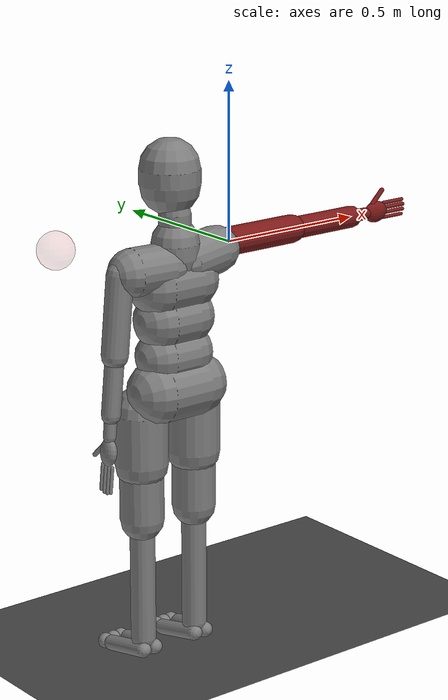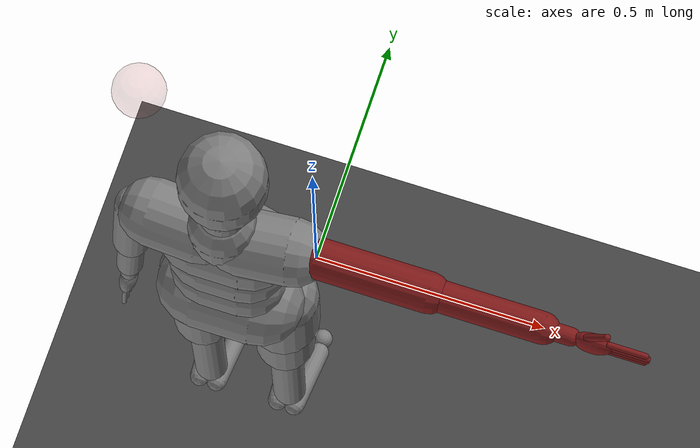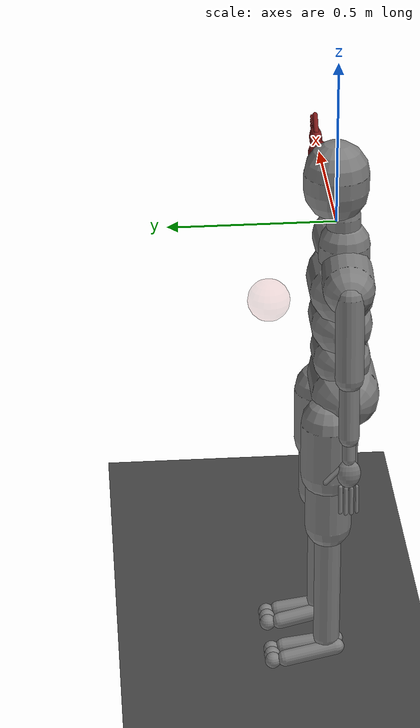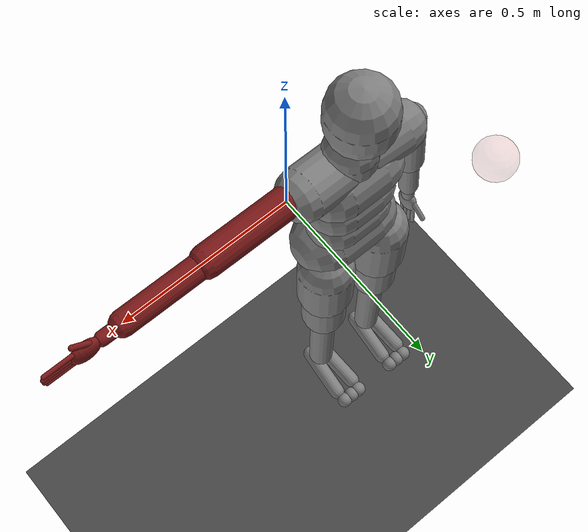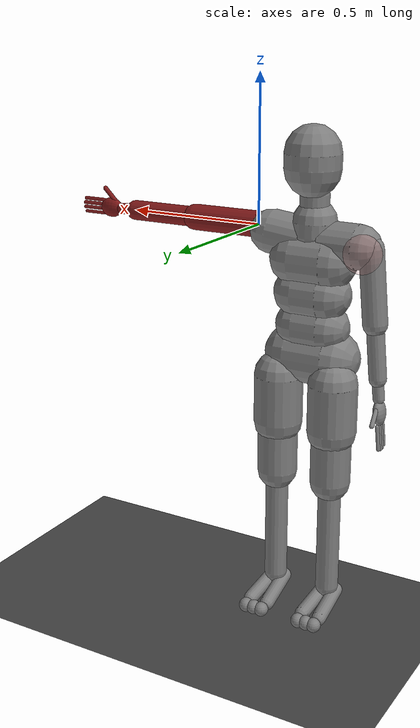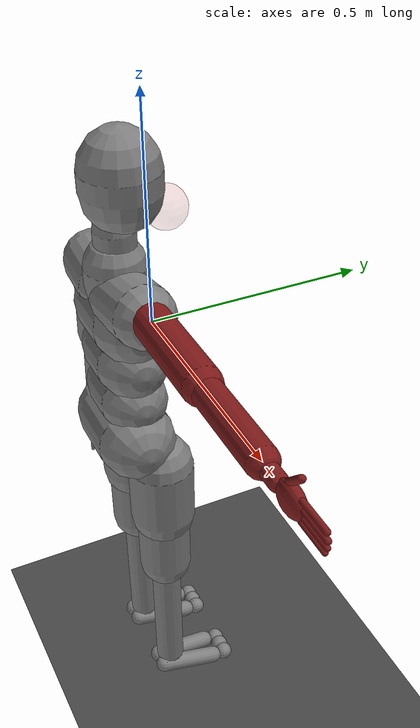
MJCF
<mujoco model="2-link arm position control">
  <option timestep="0.005" iterations="50" solver="Newton" tolerance="1e-10" />
  <compiler autolimits="true"/>

  <default>
  <!-- Adjust damping here -->
    <joint type="hinge" pos="0 0 0" axis="0 0 1" limited="true" range="-5 160" damping="2"/>
  </default>

  <worldbody>
    <body name="parent" pos="0 0 0">

      <geom name="upper arm" mass="1" type="capsule" size="0.045" fromto="0 0 0  0.25 0 0" rgba=".5 .1 .1 1"/>

      <joint name="shoulder" range="-60 160"/>

      <body name="child" pos="0.25 0 0">
        <geom name="forearm" mass="0.8" type="capsule" size="0.035" fromto="0 0 0  0.25 0 0" rgba=".5 .1 .1 1"/>
        <joint name="elbow"/>
        <!-- A visual representation of the hand. Notice there is no joint child, so it is rigidly attached to the forearm -->
        <body  name="rwrist_87" pos="0.25 0 0" euler="-90 0 90">
          <geom density="1000" type="capsule" size="0.02000001 0.03" pos="1.880135E-09 -0.03 -3.279598E-08" quat="4.003268E-08 -4.391836E-08 -0.7071071 -0.7071071" priority="0" contype="0" conaffinity="0" group="2" condim="1" solmix="1" solref="0.015 1" rgba=".5 .1 .1 1" solimp="0.99 0.99 0.003" margin="0" gap="0" friction="0.7 0.005 0.0001" name="rwrist_91" />
          <body pos="-9.784539E-09 -0.09076759 3.994287E-08" quat="-1 0 0 0" name="rhand_92">
            <geom density="1000" type="ellipsoid" size="0.03500002 0.02000001 0.045" pos="3.469804E-09 -0.01675202 -3.877605E-08" quat="4.003268E-08 -4.391836E-08 -0.7071071 -0.7071071" priority="0" contype="0" conaffinity="0" group="2" rgba=".5 .1 .1 1" condim="3" solmix="1" solref="0.015 1" solimp="0.98 0.98 0.001" margin="0" gap="0" friction="1 0.005 0.0001" name="rhand_95" />
            <body pos="-6.475558E-09 -0.06500006 1.90359E-08" quat="-1 0 0 0" name="rfingers_96">
              <geom density="1000" type="capsule" size="0.006500002 0.04" pos="-0.02399999 -0.02500005 -4.555073E-08" quat="0.7071071 -0.7071071 4.391836E-08 4.003268E-08" priority="0" contype="0" conaffinity="0" group="2" condim="3" rgba=".5 .1 .1 1" solmix="1" solref="0.015 1" solimp="0.98 0.98 0.001" margin="0" gap="0" friction="1 0.005 0.0001" name="rfinger0_101" />
              <geom density="1000" type="capsule" size="0.006500002 0.04" pos="-0.00799998 -0.02999995 -3.565628E-10" quat="0.7071071 -0.7071071 4.391836E-08 4.003268E-08" priority="0" contype="0" conaffinity="0" group="2" condim="3" rgba=".5 .1 .1 1" solmix="1" solref="0.015 1" solimp="0.98 0.98 0.001" margin="0" gap="0" friction="1 0.005 0.0001" name="rfinger1_102" />
              <geom density="1000" type="capsule" size="0.006000001 0.04" pos="0.007999999 -0.03000007 -5.897357E-09" quat="0.7071071 -0.7071071 4.391836E-08 4.003268E-08" priority="0" contype="0" conaffinity="0" group="2" condim="3" rgba=".5 .1 .1 1" solmix="1" solref="0.015 1" solimp="0.98 0.98 0.001" margin="0" gap="0" friction="1 0.005 0.0001" name="rfinger2_103" />
              <geom density="1000" type="capsule" size="0.005500001 0.04" pos="0.02400001 -0.02500007 3.095344E-08" quat="0.7071071 -0.7071071 4.391836E-08 4.003268E-08" priority="0" contype="0" conaffinity="0" group="2" condim="3" rgba=".5 .1 .1 1" solmix="1" solref="0.015 1" solimp="0.98 0.98 0.001" margin="0" gap="0" friction="1 0.005 0.0001" name="rfinger3_104" />
              <body name="tip" pos="-0.048 0 0">

              </body>
            </body>
            <body pos="-0.025 6.70552E-09 -8.940694E-09" quat="0.92388 -4.930634E-08 6.000214E-08 -0.382683" name="rthumb_97">
              <geom density="1000" type="capsule" size="0.008000004 0.03" pos="2.888915E-08 -0.03000006 -2.920286E-08" quat="3.642271E-08 6.018672E-09 -0.707107 -0.707107" priority="0" contype="0" conaffinity="0" group="2" rgba=".5 .1 .1 1"  condim="3" solmix="1" solref="0.015 1" solimp="0.98 0.98 0.001" margin="0" gap="0" friction="1 0.005 0.0001" name="rthumb_105" />
            </body>
          </body>
        </body>

      </body>
    </body>

    <body name="forward kinematics target" mocap="true" pos="-0.48 0.24 0">
        <geom type="sphere" size="0.06" contype="0" conaffinity="0" rgba="0.8 0.4 0.4 0.2"/>
    </body>

    <geom name="floor" pos="0 0 -1.35" size="0 0 1" type="plane" material="matplane"/>
    <light directional="true" diffuse=".8 .8 .8" specular=".2 .2 .2" pos="0 0 5" dir="0 0 -1"/>
  </worldbody>

  <actuator>
    <position kp="10" name="shoulder_p" joint="shoulder" ctrllimited="true" ctrlrange="-1.0472 1.5708"/>
    <position kp="10" name="elbow_p" joint="elbow" ctrllimited="true" ctrlrange="-0.0872665 1.5708"/>

  </actuator>

  <include file="cmu_model.xml"/>

  <asset>
    <texture type="skybox" builtin="gradient" rgb1="0.6 0.6 0.6" rgb2="0 0 0" width="512" height="512"/>
    <texture name="texplane" type="2d" builtin="checker" rgb1=".25 .25 .25" rgb2=".3 .3 .3" width="512" height="512" mark="cross" markrgb=".8 .8 .8"/>
    <material name="matplane" reflectance="0.3" texture="texplane" texrepeat="1 1" texuniform="true"/>
  </asset>

  <visual>
    <rgba haze=".3 .3 .3 1"/>
  </visual>
</mujoco>

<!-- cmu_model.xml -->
<!--
This model is only used as a visual reference to illustrate a humanoid body in some of the xml files.
-->

<mujoco>
  <worldbody>
    <body pos="-0.2067787 -0.0002415101 0.1821983" quat="-8.659561E-17 0 0.7071068 0.7071068" mocap="true" name="Mocap_K_head_0" />
    <body pos="-0.208 -0.004 -0.3789999" quat="-8.659561E-17 0 0.7071068 0.7071068" mocap="true" name="Mocap_K_lowerback_1" />
    <body pos="0.5372286 0.00427828 0.00206387" quat="-0.7071068 -2.980232E-07 1.192093E-07 -0.7071068" mocap="true" name="Mocap_K_rhand_2" />
    <body pos="-0.2085659 -0.012053 -0.2657869" quat="-8.659561E-17 0 0.7071068 0.7071068" mocap="true" name="Mocap_K_upperback_3" />
    <body pos="-0.106063 0.04544622 -1.291445" quat="-6.123234E-17 6.123234E-17 0 1" mocap="true" name="Mocap_K_rfoot_4" />
    <body pos="-0.309937 0.04544622 -1.291445" quat="-6.123234E-17 6.123234E-17 0 1" mocap="true" name="Mocap_K_lfoot_5" />
    <body pos="-0.461662 0.004277938 -0.570159" quat="0.5230872 0.475794 -0.4757942 -0.5230867" mocap="true" name="Mocap_K_lhand_6" />
    <body pos="-0.2090784 -0.01111618 -0.1522268" quat="-8.659561E-17 0 0.7071068 0.7071068" mocap="true" name="Mocap_K_thorax_7" />
    <body pos="-0.208 -0.004 -0.3789999" quat="-1 0 0 0" mocap="true" name="Mocap_K_root_8" />
    <body pos="-0.208 -0.004 -0.379" quat="-1 0 0 0" name="K_root_9">
      <body pos="0 0 0" quat="0 0 0.7071068 0.7071068" name="K_lhipjoint_10">
        <geom density="10" type="capsule" size="0.008000004 0.02187361" pos="0.05096854 -0.04590372 0.02472301" quat="0.5708001 -0.5666021 -0.5942641 0" priority="0" contype="0" conaffinity="0" group="2" condim="1" solmix="1" solref="0.015 1" solimp="0.99 0.99 0.003" margin="0" gap="0" friction="0.7 0.005 0.0001" name="K_lhipjoint_15" />
        <body pos="0.1019371 -0.09180747 0.04944616" quat="-1 0 0 0" name="K_lfemur_16">
          <joint type="ball" pos="0 0 0" armature="0.0225" springref="0" springdamper="0 0" damping="10" stiffness="1000" solreflimit="0.02 1" solimplimit="0.9 0.95 0.001 0.5 2" solreffriction="0.02 1" solimpfriction="0.9 0.95 0.001 0.5 2" frictionloss="100" limited="true" margin="0" range="0 137.51" name="K_lfemurr_22" />
          <geom density="0" type="capsule" size="0.08500003 0.083" pos="0 -0.115473 3.61172E-08" quat="0.6963643 -0.6963643 -0.1227881 -0.1227881" priority="0" contype="0" conaffinity="0" group="2" condim="1" solmix="1" solref="0.015 1" solimp="0.99 0.99 0.003" margin="0" gap="0" friction="0.7 0.005 0.0001" name="K_lfemur_upper_23" />
          <geom density="1000" type="capsule" size="0.07000002 0.182226" pos="0 -0.202473 4.648841E-08" quat="0.6963643 -0.6963643 -0.1227881 -0.1227881" priority="0" contype="0" conaffinity="0" group="2" condim="1" solmix="1" solref="0.015 1" solimp="0.99 0.99 0.003" margin="0" gap="0" friction="0.7 0.005 0.0001" name="K_lfemur_24" />
          <body pos="0 -0.4049452 1.302296E-07" quat="-1 0 0 0" name="K_ltibia_25">
            <joint type="hinge" pos="0 0 0" axis="1 0 0" ref="0" armature="0.0225" springref="0" springdamper="0 0" damping="10" stiffness="1000" solreflimit="0.02 1" solimplimit="0 0.99 0.01 0.5 2" solreffriction="0.02 1" solimpfriction="0.9 0.95 0.001 0.5 2" frictionloss="100" limited="true" margin="0" range="0.5729578 170" name="K_ltibiarx_34" />
            <geom density="1000" type="capsule" size="0.04000001 0.182561" pos="0 -0.202846 2.418112E-08" quat="0.6963643 -0.6963643 -0.1227881 -0.1227881" priority="0" contype="0" conaffinity="0" group="2" condim="1" solmix="1" solref="0.015 1" solimp="0.99 0.99 0.003" margin="0" gap="0" friction="0.7 0.005 0.0001" name="K_ltibia_35" />
            <body pos="0 -0.415693 1.091591E-07" quat="0.7071069 -0.7071069 0 0" name="K_lfoot_36">
              <joint type="hinge" pos="0 0 0" axis="-4.768369E-07 0 1" ref="0" armature="0.0225" springref="0" springdamper="0 0" damping="10" stiffness="1000" solreflimit="0.02 1" solimplimit="0 0.99 0.01 0.5 2" solreffriction="0.02 1" solimpfriction="0.9 0.95 0.001 0.5 2" frictionloss="100" limited="true" margin="0" range="-69.99997 20.00001" name="K_lfootrz_45" />
              <joint type="hinge" pos="0 0 0" axis="1 0 0" ref="0" armature="0.0225" springref="0" springdamper="0 0" damping="10" stiffness="1000" solreflimit="0.02 1" solimplimit="0 0.99 0.01 0.5 2" solreffriction="0.02 1" solimpfriction="0.9 0.95 0.001 0.5 2" frictionloss="100" limited="true" margin="0" range="-44.99999 45.83662" name="K_lfootrx_46" />
              <geom density="1000" type="capsule" size="0.02500003 0.08000004" pos="-0.02700002 -0.04999997 -0.01138783" quat="0.7672563 -0.6405111 0.02306491 -0.02306581" priority="0" contype="0" conaffinity="1" group="2" condim="3" solmix="1" solref="0.015 1" solimp="0.98 0.98 0.001" margin="0" gap="0" friction="1 0.005 0.0001" name="K_lfoot_47" />
              <geom density="1000" type="capsule" size="0.02500003 0.08000004" pos="0.02700002 -0.04999997 -0.01138783" quat="0.7288731 -0.5939951 -0.240743 -0.240743" priority="0" contype="0" conaffinity="1" group="2" condim="3" solmix="1" solref="0.015 1" solimp="0.98 0.98 0.001" margin="0" gap="0" friction="1 0.005 0.0001" name="K_lfoot_ch_48" />
              <body pos="0 -0.1563721 -0.02277565" quat="-1 0 0 0" name="K_ltoes_49">
                <joint type="hinge" pos="0 0 0" axis="1 0 0" ref="0" armature="0.0225" springref="0" springdamper="0 0" damping="10" stiffness="1000" solreflimit="0.02 1" solimplimit="0 0.99 0.01 0.5 2" solreffriction="0.02 1" solimpfriction="0.9 0.95 0.001 0.5 2" frictionloss="100" limited="true" margin="0" range="-90.00021 20.00001" name="K_ltoesrx_66" />
                <geom density="1000" type="sphere" size="0.02500002" pos="0 -0.009999995 -0.00999999" quat="-1 0 0 0" priority="0" contype="0" conaffinity="1" group="2" condim="3" solmix="1" solref="0.015 1" solimp="0.98 0.98 0.001" margin="0" gap="0" friction="1 0.005 0.0001" name="K_ltoes0_67" />
                <geom density="1000" type="sphere" size="0.02500002" pos="0.03000002 -0.009999995 -0.00999999" quat="-1 0 0 0" priority="0" contype="0" conaffinity="1" group="2" condim="3" solmix="1" solref="0.015 1" solimp="0.98 0.98 0.001" margin="0" gap="0" friction="1 0.005 0.0001" name="K_ltoes1_68" />
                <geom density="1000" type="sphere" size="0.02500002" pos="-0.03000002 -0.009999995 -0.00999999" quat="-1 0 0 0" priority="0" contype="0" conaffinity="1" group="2" condim="3" solmix="1" solref="0.015 1" solimp="0.98 0.98 0.001" margin="0" gap="0" friction="1 0.005 0.0001" name="K_ltoes2_69" />
              </body>
            </body>
          </body>
        </body>
      </body>
      <body pos="0 0 0" quat="0 0 0.7071068 0.7071068" name="K_rhipjoint_11">
        <geom density="10" type="capsule" size="0.008000002 0.02187361" pos="-0.05096852 -0.04590372 0.02472301" quat="0.5748562 -0.5475942 0.6080142 0" priority="0" contype="0" conaffinity="0" group="2" condim="1" solmix="1" solref="0.015 1" solimp="0.99 0.99 0.003" margin="0" gap="0" friction="0.7 0.005 0.0001" name="K_rhipjoint_17" />
        <body pos="-0.1019371 -0.09180744 0.04944613" quat="-1 0 0 0" name="K_rfemur_18">
          <joint type="ball" pos="0 0 0" armature="0.0225" springref="0" springdamper="0 0" damping="10" stiffness="1000" solreflimit="0.02 1" solimplimit="0.9 0.95 0.001 0.5 2" solreffriction="0.02 1" solimpfriction="0.9 0.95 0.001 0.5 2" frictionloss="100" limited="true" margin="0" range="0 137.51" name="K_rfemurr_26" />
          <geom density="0" type="capsule" size="0.08500003 0.083" pos="0 -0.115473 3.61172E-08" quat="0.6963643 -0.6963643 0.1227881 0.1227881" priority="0" contype="0" conaffinity="0" group="2" condim="1" solmix="1" solref="0.015 1" solimp="0.99 0.99 0.003" margin="0" gap="0" friction="0.7 0.005 0.0001" name="K_rfemur_upper_27" />
          <geom density="1000" type="capsule" size="0.07000002 0.182226" pos="0 -0.2024731 4.648841E-08" quat="0.6963643 -0.6963643 0.1227881 0.1227881" priority="0" contype="0" conaffinity="0" group="2" condim="1" solmix="1" solref="0.015 1" solimp="0.99 0.99 0.003" margin="0" gap="0" friction="0.7 0.005 0.0001" name="K_rfemur_28" />
          <body pos="0 -0.4049451 1.004273E-07" quat="-1 0 0 0" name="K_rtibia_29">
            <joint type="hinge" pos="0 0 0" axis="1 0 0" ref="0" armature="0.0225" springref="0" springdamper="0 0" damping="10" stiffness="1000" solreflimit="0.02 1" solimplimit="0 0.99 0.01 0.5 2" solreffriction="0.02 1" solimpfriction="0.9 0.95 0.001 0.5 2" frictionloss="100" limited="true" margin="0" range="0.5729578 170" name="K_rtibiarx_37" />
            <geom density="1000" type="capsule" size="0.04000001 0.182561" pos="0 -0.2028461 2.418113E-08" quat="0.6963643 -0.6963643 0.1227881 0.1227881" priority="0" contype="0" conaffinity="0" group="2" condim="1" solmix="1" solref="0.015 1" solimp="0.99 0.99 0.003" margin="0" gap="0" friction="0.7 0.005 0.0001" name="K_rtibia_38" />
            <body pos="0 -0.4156931 1.091591E-07" quat="0.7071069 -0.7071069 0 0" name="K_rfoot_39">
              <joint type="hinge" pos="0 0 0" axis="-4.768369E-07 0 1" ref="0" armature="0.0225" springref="0" springdamper="0 0" damping="10" stiffness="1000" solreflimit="0.02 1" solimplimit="0 0.99 0.01 0.5 2" solreffriction="0.02 1" solimpfriction="0.9 0.95 0.001 0.5 2" frictionloss="100" limited="true" margin="0" range="-20.00001 69.99997" name="K_rfootrz_50" />
              <joint type="hinge" pos="0 0 0" axis="1 0 0" ref="0" armature="0.0225" springref="0" springdamper="0 0" damping="10" stiffness="1000" solreflimit="0.02 1" solimplimit="0 0.99 0.01 0.5 2" solreffriction="0.02 1" solimpfriction="0.9 0.95 0.001 0.5 2" frictionloss="100" limited="true" margin="0" range="-44.99999 45.83662" name="K_rfootrx_51" />
              <geom density="1000" type="capsule" size="0.02500002 0.08000004" pos="-0.02700002 -0.05000003 -0.01138783" quat="0.7352074 -0.5863352 0.2405011 0.2405011" priority="0" contype="0" conaffinity="1" group="2" condim="3" solmix="1" solref="0.015 1" solimp="0.98 0.98 0.001" margin="0" gap="0" friction="1 0.005 0.0001" name="K_rfoot_52" />
              <geom density="1000" type="capsule" size="0.02500002 0.08000002" pos="0.02700003 -0.05000003 -0.01138783" quat="0.7731252 -0.6332311 -0.02545851 0.02545841" priority="0" contype="0" conaffinity="1" group="2" condim="3" solmix="1" solref="0.015 1" solimp="0.98 0.98 0.001" margin="0" gap="0" friction="1 0.005 0.0001" name="K_rfoot_ch_53" />
              <body pos="0 -0.1563721 -0.02277565" quat="-1 0 0 0" name="K_rtoes_54">
                <joint type="hinge" pos="0 0 0" axis="1 0 0" ref="0" armature="0.0225" springref="0" springdamper="0 0" damping="10" stiffness="1000" solreflimit="0.02 1" solimplimit="0 0.99 0.01 0.5 2" solreffriction="0.02 1" solimpfriction="0.9 0.95 0.001 0.5 2" frictionloss="100" limited="true" margin="0" range="-90.00021 20.00001" name="K_rtoesrx_70" />
                <geom density="1000" type="sphere" size="0.02500002" pos="0 -0.009999995 -0.00999999" quat="-1 0 0 0" priority="0" contype="0" conaffinity="1" group="2" condim="3" solmix="1" solref="0.015 1" solimp="0.98 0.98 0.001" margin="0" gap="0" friction="1 0.005 0.0001" name="K_rtoes0_71" />
                <geom density="1000" type="sphere" size="0.02500002" pos="0.03000002 -0.009999995 -0.00999999" quat="-1 0 0 0" priority="0" contype="0" conaffinity="1" group="2" condim="3" solmix="1" solref="0.015 1" solimp="0.98 0.98 0.001" margin="0" gap="0" friction="1 0.005 0.0001" name="K_rtoes1_72" />
                <geom density="1000" type="sphere" size="0.02500002" pos="-0.03000001 -0.009999995 -0.00999999" quat="-1 0 0 0" priority="0" contype="0" conaffinity="1" group="2" condim="3" solmix="1" solref="0.015 1" solimp="0.98 0.98 0.001" margin="0" gap="0" friction="1 0.005 0.0001" name="K_rtoes2_73" />
              </body>
            </body>
          </body>
        </body>
      </body>
      <freejoint name="K_freejoint_12" />
      <geom density="1000" type="capsule" size="0.1 0.07" pos="0 0 -0.05000001" quat="-0.5 -0.5 -0.5 -0.5" priority="0" contype="0" conaffinity="0" group="2" condim="1" solmix="1" solref="0.015 1" solimp="0.99 0.99 0.003" margin="0" gap="0" friction="0.7 0.005 0.0001" name="K_root_geom_13" />
      <body pos="0 0 0" quat="0 0 0.7071068 0.7071068" name="K_lowerback_14">
        <joint type="ball" pos="0 0 0" armature="0.0225" springref="0" springdamper="0 0" damping="10" stiffness="1000" solreflimit="0.02 1" solimplimit="0.9 0.95 0.001 0.5 2" solreffriction="0.02 1" solimpfriction="0.9 0.95 0.001 0.5 2" frictionloss="100" limited="true" margin="0" range="0 37.24227" name="K_lowerbackr_19" />
        <geom density="1000" type="capsule" size="0.08500004 0.04540022" pos="0.002829314 0.05660651 0.009999989" quat="0.7071069 0 0.7071069 0" priority="0" contype="0" conaffinity="0" group="2" condim="1" solmix="1" solref="0.015 1" solimp="0.99 0.99 0.003" margin="0" gap="0" friction="0.7 0.005 0.0001" name="K_lowerback_20" />
        <body pos="0.0005658568 0.113213 -0.008053012" quat="-1 0 0 0" name="K_upperback_21">
          <geom density="1000" type="capsule" size="0.09000005 0.04542623" pos="0.0002562702 0.05678022 0.02" quat="0.7071069 0 0.7071069 0" priority="0" contype="0" conaffinity="0" group="2" condim="1" solmix="1" solref="0.015 1" solimp="0.99 0.99 0.003" margin="0" gap="0" friction="0.7 0.005 0.0001" name="K_upperback_32" />
          <body pos="0.0005125405 0.11356 0.0009368002" quat="-1 0 0 0" name="K_thorax_33">
            <joint type="ball" pos="0 0 0" armature="0.0225" springref="0" springdamper="0 0" damping="10" stiffness="1000" solreflimit="0.02 1" solimplimit="0.9 0.95 0.001 0.5 2" solreffriction="0.02 1" solimpfriction="0.9 0.95 0.001 0.5 2" frictionloss="100" limited="true" margin="0" range="0 37.24227" name="K_thoraxr_40" />
            <geom density="1000" type="capsule" size="0.09500004 0.05702063" pos="0 0.05697251 0.01999999" quat="0.7071069 0 0.7071069 0" priority="0" contype="0" conaffinity="0" group="2" condim="1" solmix="1" solref="0.015 1" solimp="0.99 0.99 0.003" margin="0" gap="0" friction="0.7 0.005 0.0001" name="K_thorax_41" />
            <body pos="0 0.113945 0.004680338" quat="-1 0 0 0" name="K_lowerneck_42">
              <joint type="ball" pos="0 0 0" armature="0.0225" springref="0" springdamper="0 0" damping="10" stiffness="1000" solreflimit="0.02 1" solimplimit="0.9 0.95 0.001 0.5 2" solreffriction="0.02 1" solimpfriction="0.9 0.95 0.001 0.5 2" frictionloss="100" limited="true" margin="0" range="0 30.0803" name="K_lowerneckr_55" />
              <geom density="500" type="capsule" size="0.07500006 0.02279232" pos="-0.001650721 0.04524014 0.005343582" quat="0.7071069 0.7071069 0 0" priority="0" contype="1" conaffinity="1" group="2" condim="1" solmix="1" solref="0.015 1" solimp="0.99 0.99 0.003" margin="0" gap="0" friction="0.7 0.005 0.0001" name="K_lowerneck_56" />
              <body pos="-0.003301442 0.09048013 0.01068716" quat="-1 0 0 0" name="K_upperneck_57">
                <joint type="ball" pos="0 0 0" armature="0.0225" springref="0" springdamper="0 0" damping="10" stiffness="1000" solreflimit="0.02 1" solimplimit="0.9 0.95 0.001 0.5 2" solreffriction="0.02 1" solimpfriction="0.9 0.95 0.001 0.5 2" frictionloss="100" limited="true" margin="0" range="0 30.0803" name="K_upperneckr_74" />
                <geom density="500" type="capsule" size="0.05000004 0.02252722" pos="0.0005008728 0.04499561 -0.002246445" quat="0.7071069 0.7071069 0 0" priority="0" contype="1" conaffinity="1" group="2" condim="1" solmix="1" solref="0.015 1" solimp="0.99 0.99 0.003" margin="0" gap="0" friction="0.7 0.005 0.0001" name="K_upperneck_75" />
                <body pos="0.001001761 0.13 -0.004492865" quat="-1 0 0 0" name="K_head_76">
                  <joint type="ball" pos="0 0 0" armature="0.0225" springref="0" springdamper="0 0" damping="10" stiffness="1000" solreflimit="0.02 1" solimplimit="0.9 0.95 0.001 0.5 2" solreffriction="0.02 1" solimpfriction="0.9 0.95 0.001 0.5 2" frictionloss="100" limited="true" margin="0" range="0 0.525" name="K_headr_83" />
                  <geom density="800" type="capsule" size="0.09500007 0.02410402" pos="0.0003414602 0.04818398 0.02499997" quat="0.7071069 0.7071069 0 0" priority="0" contype="0" conaffinity="0" group="2" condim="1" solmix="1" solref="0.015 1" solimp="0.99 0.99 0.003" margin="0" gap="0" friction="0.7 0.005 0.0001" name="K_head_84" />
                </body>
              </body>
            </body>
            <body pos="0 0.113945 0.004680338" quat="-0.9810503 0 0 0.193754" name="K_lclavicle_43">
              <geom density="500" type="capsule" size="0.07500003 0.06000002" pos="0.09188176 0.03826361 0.005357058" quat="0.6879708 0.278988 -0.6699718 -8.640231E-10" priority="0" contype="1" conaffinity="1" group="2" condim="1" solmix="1" solref="0.015 1" solimp="0.99 0.99 0.003" margin="0" gap="0" friction="0.7 0.005 0.0001" name="K_lclavicle_60" />
              <body pos="0.1800001 0.09000004 0.01071411" quat="-0.2512589 -0.2317584 0.9377106 -0.06209913" name="K_lhumerus_61">
                <joint type="ball" pos="0 0 0" armature="0.0225" springref="0" springdamper="0 0" damping="10" stiffness="1000" solreflimit="0.02 1" solimplimit="0.9 0.95 0.001 0.5 2" solreffriction="0.02 1" solimpfriction="0.9 0.95 0.001 0.5 2" frictionloss="100" limited="true" margin="0" range="0 120" name="K_lhumerusr_77" />
                <geom density="1000" type="capsule" size="0.042 0.124579" pos="-6.143738E-09 -0.138421 2.840297E-08" quat="0.6123726 -0.6123727 0.3535533 0.3535534" priority="0" contype="0" conaffinity="0" group="2" condim="1" solmix="1" solref="0.015 1" solimp="0.99 0.99 0.003" margin="0" gap="0" friction="0.7 0.005 0.0001" name="K_lhumerus_78" />
                <body pos="3.413431E-08 -0.2768431 4.919416E-08" quat="-1 0 0 0" name="K_lradius_79">
                  <joint type="hinge" pos="0 0 0" axis="0.8660251 5.233215E-09 0.5000004" ref="0" armature="0.0225" springref="0" springdamper="0 0" damping="10" stiffness="1000" solreflimit="0.02 1" solimplimit="0 0.99 0.01 0.5 2" solreffriction="0.02 1" solimpfriction="0.9 0.95 0.001 0.5 2" frictionloss="100" limited="true" margin="0" range="-10 170" name="K_lradiusrx_85" />
                  <geom density="1000" type="capsule" size="0.03 0.08169109" pos="6.397308E-09 -0.09076791 1.018815E-08" quat="0.6123726 -0.6123727 0.3535533 0.3535534" priority="0" contype="0" conaffinity="0" group="2" condim="1" solmix="1" solref="0.015 1" solimp="0.99 0.99 0.003" margin="0" gap="0" friction="0.7 0.005 0.0001" name="K_lradius_86" />
                  <body pos="-1.908565E-08 -0.1815361 1.970062E-09" quat="-0.5000004 -2.481983E-09 0.8660256 -7.237219E-09" name="K_lwrist_87">
                    <geom density="1000" type="capsule" size="0.02000001 0.03" pos="1.880135E-09 -0.03 -3.279598E-08" quat="4.003268E-08 -4.391836E-08 -0.7071071 -0.7071071" priority="0" contype="0" conaffinity="0" group="2" condim="1" solmix="1" solref="0.015 1" solimp="0.99 0.99 0.003" margin="0" gap="0" friction="0.7 0.005 0.0001" name="K_lwrist_91" />
                    <body pos="-9.784539E-09 -0.09076759 3.994287E-08" quat="-1 0 0 0" name="K_lhand_92">
                      <geom density="1000" type="ellipsoid" size="0.03500002 0.02000001 0.045" pos="3.469804E-09 -0.01675202 -3.877605E-08" quat="4.003268E-08 -4.391836E-08 -0.7071071 -0.7071071" priority="0" contype="0" conaffinity="0" group="2" condim="3" solmix="1" solref="0.015 1" solimp="0.98 0.98 0.001" margin="0" gap="0" friction="1 0.005 0.0001" name="K_lhand_95" />
                      <body pos="-6.475558E-09 -0.07500006 1.90359E-08" quat="-1 0 0 0" name="K_lfingers_96">
                        <geom density="1000" type="capsule" size="0.006500002 0.04" pos="-0.02399999 -0.02500005 -4.555073E-08" quat="0.7071071 -0.7071071 4.391836E-08 4.003268E-08" priority="0" contype="0" conaffinity="0" group="2" condim="3" solmix="1" solref="0.015 1" solimp="0.98 0.98 0.001" margin="0" gap="0" friction="1 0.005 0.0001" name="K_lfinger0_101" />
                        <geom density="1000" type="capsule" size="0.006500002 0.04" pos="-0.00799998 -0.02999995 -3.565628E-10" quat="0.7071071 -0.7071071 4.391836E-08 4.003268E-08" priority="0" contype="0" conaffinity="0" group="2" condim="3" solmix="1" solref="0.015 1" solimp="0.98 0.98 0.001" margin="0" gap="0" friction="1 0.005 0.0001" name="K_lfinger1_102" />
                        <geom density="1000" type="capsule" size="0.006000001 0.04" pos="0.007999999 -0.03000007 -5.897357E-09" quat="0.7071071 -0.7071071 4.391836E-08 4.003268E-08" priority="0" contype="0" conaffinity="0" group="2" condim="3" solmix="1" solref="0.015 1" solimp="0.98 0.98 0.001" margin="0" gap="0" friction="1 0.005 0.0001" name="K_lfinger2_103" />
                        <geom density="1000" type="capsule" size="0.005500001 0.04" pos="0.02400001 -0.02500007 3.095344E-08" quat="0.7071071 -0.7071071 4.391836E-08 4.003268E-08" priority="0" contype="0" conaffinity="0" group="2" condim="3" solmix="1" solref="0.015 1" solimp="0.98 0.98 0.001" margin="0" gap="0" friction="1 0.005 0.0001" name="K_lfinger3_104" />
                      </body>
                      <body pos="-0.025 6.70552E-09 -8.940694E-09" quat="0.92388 -4.930634E-08 6.000214E-08 -0.382683" name="K_lthumb_97">
                        <geom density="1000" type="capsule" size="0.008000004 0.03" pos="2.888915E-08 -0.03000006 -2.920286E-08" quat="3.642271E-08 6.018672E-09 -0.707107 -0.707107" priority="0" contype="0" conaffinity="0" group="2" condim="3" solmix="1" solref="0.015 1" solimp="0.98 0.98 0.001" margin="0" gap="0" friction="1 0.005 0.0001" name="K_lthumb_105" />
                      </body>
                    </body>
                  </body>
                </body>
              </body>
            </body>
            <body pos="0 0.113945 0.004680338" quat="-0.991445 0 0 -0.1305263" name="K_rclavicle_44">
              <geom density="500" type="capsule" size="0.07500002 0.06000001" pos="-0.09188176 0.03826362 0.005357056" quat="0.6879708 0.2789879 0.6699718 1.381872E-08" priority="0" contype="0" conaffinity="0" group="2" condim="1" solmix="1" solref="0.015 1" solimp="0.99 0.99 0.003" margin="0" gap="0" friction="0.7 0.005 0.0001" name="K_rclavicle_64" />
              <geom density="500" type="capsule" size="0.0300002 0.01000001" pos="-0.09188176 0.03826362 -0.025357056" quat="0.6879708 0.2789879 0.6699718 1.381872E-08" priority="0" contype="1" conaffinity="1" group="2" condim="1" solmix="1" solref="0.015 1" solimp="0.99 0.99 0.003" margin="0" gap="0" friction="0.7 0.005 0.0001" name="K_rclavicle_dummy" rgba="0 0 0 0"/>
            </body>
          </body>
        </body>
      </body>
    </body>
  </worldbody>
  <contact />
  <tendon />
  <equality>
    <weld body1="Mocap_K_head_0" body2="K_head_76" solref="0.02 1" solimp="0.9 0.95 0.001 0.5 2" name="weld_head_111" />
    <weld body1="Mocap_K_upperback_3" body2="K_upperback_21" solref="0.02 1" solimp="0.9 0.95 0.001 0.5 2" name="weld_upperback_113" />
    <weld body1="Mocap_K_lhand_6" body2="K_lhand_92" solref="0.02 1" solimp="0.9 0.95 0.001 0.5 2" name="weld_lhand_114" />
    <weld body1="Mocap_K_lowerback_1" body2="K_lowerback_14" solref="0.02 1" solimp="0.9 0.95 0.001 0.5 2" name="weld_lowerback_115" />
    <weld body1="Mocap_K_root_8" body2="K_root_9" solref="0.02 1" solimp="0.9 0.95 0.001 0.5 2" name="weld_root_116" />
    <weld body1="Mocap_K_thorax_7" body2="K_thorax_33" solref="0.02 1" solimp="0.9 0.95 0.001 0.5 2" name="weld_thorax_117" />
  </equality>
  <actuator />
  <sensor />
  <compiler coordinate="local" />
  <option gravity="0 0 -9.81" timestep="0.008" impratio="1" magnetic="0 0 0" wind="0 -0.5 0" density="0" viscosity="0" o_margin="0" o_solref="0.02 1" o_solimp="0.9 0.95 0.001 0.5 2" integrator="Euler" collision="all" cone="pyramidal" jacobian="auto" solver="Newton" iterations="100" tolerance="1E-08" noslip_iterations="0" noslip_tolerance="1E-06" mpr_iterations="50" mpr_tolerance="1E-06">
    <flag constraint="enable" equality="enable" frictionloss="enable" limit="enable" contact="enable" passive="enable" gravity="enable" clampctrl="enable" warmstart="enable" filterparent="enable" actuation="enable" refsafe="enable" override="disable" energy="disable" fwdinv="disable" sensornoise="disable" multiccd="disable" />
  </option>
  <asset />
</mujoco>
